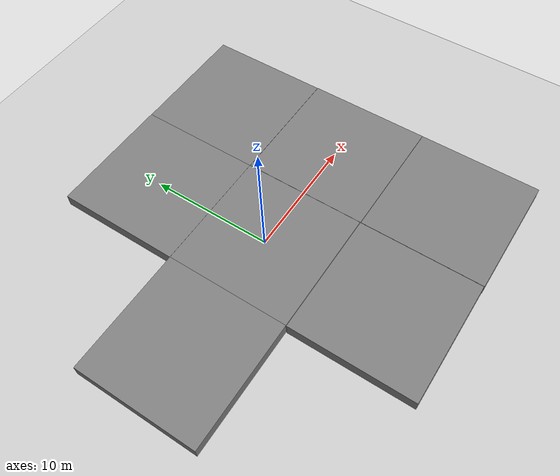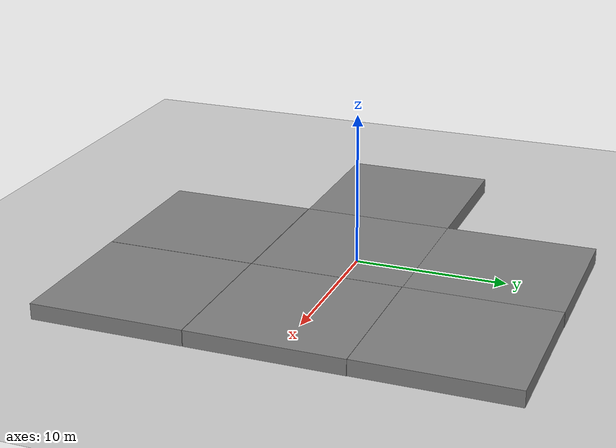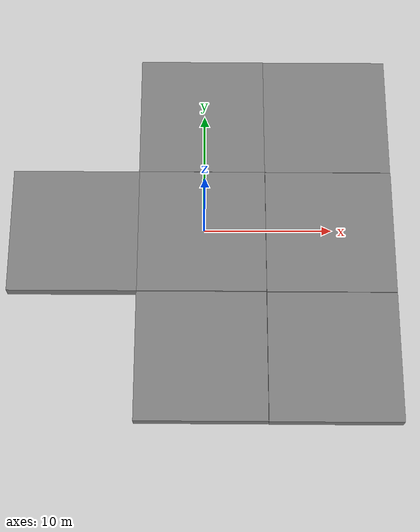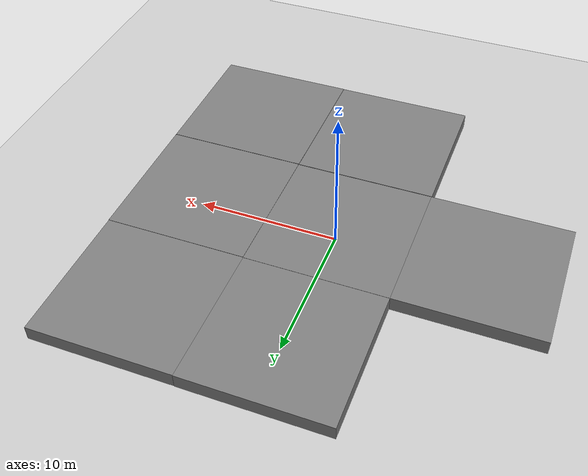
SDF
<sdf version="1.7">
 <world name="default">
  <model name="ground_plane">
   <static>1</static>
   <link name="link">
    <collision name="collision">
     <geometry><plane><normal>0 0 1</normal><size>100 100</size></plane></geometry>
     <surface>
      <contact><collide_bitmask>65535</collide_bitmask></contact>
      <friction><ode><mu>100</mu><mu2>50</mu2></ode></friction>
     </surface>
    </collision>
    <visual name="visual">
     <cast_shadows>0</cast_shadows>
     <geometry><plane><normal>0 0 1</normal><size>100 100</size></plane></geometry>
     <material>
      <script><uri>file://media/materials/scripts/gazebo.material</uri><name>Gazebo/Grey</name></script>
     </material>
    </visual>
   </link>
  </model>
  <model name="farm">
   <link name="link">
    <inertial>
     <mass>1</mass>
     <inertia><ixx>1</ixx><ixy>0</ixy><ixz>0</ixz><iyy>1</iyy><iyz>0</iyz><izz>1</izz></inertia>
    </inertial>
    <visual name="visual_1">
     <pose>2 2.5 0 0 -0 0</pose>
     <cast_shadows>0</cast_shadows>
     <geometry><box><size>10 10 2</size></box></geometry>
     <material>
      <script>
       <uri>model://mud_box/materials/scripts</uri>
       <uri>model://mud_box/materials/textures</uri>
       <name>vrc/mud</name>
      </script>
      <shader type="pixel"><normal_map>__default__</normal_map></shader>
      <ambient>0.5 0.5 0.5 1</ambient>
      <diffuse>0.5 0.5 0.5 1</diffuse>
      <specular>0.2 0.2 0.2 1</specular>
      <emissive>0 0 0 1</emissive>
     </material>
    </visual>
    <visual name="visual_2">
     <pose>2 2.5 0 0 -0 0</pose>
     <cast_shadows>0</cast_shadows>
     <geometry><box><size>10 10 2</size></box></geometry>
     <material>
      <script>
       <uri>model://mud_box/materials/scripts</uri>
       <uri>model://mud_box/materials/textures</uri>
       <name>vrc/mud</name>
      </script>
      <shader type="pixel"><normal_map>__default__</normal_map></shader>
      <ambient>0.5 0.5 0.5 1</ambient>
      <diffuse>0.5 0.5 0.5 1</diffuse>
      <specular>0.2 0.2 0.2 1</specular>
      <emissive>0 0 0 1</emissive>
     </material>
    </visual>
    <visual name="visual_4">
     <pose>2 2.5 0 0 -0 0</pose>
     <cast_shadows>0</cast_shadows>
     <geometry><box><size>10 10 2</size></box></geometry>
     <material>
      <script>
       <uri>model://mud_box/materials/scripts</uri>
       <uri>model://mud_box/materials/textures</uri>
       <name>vrc/mud</name>
      </script>
      <shader type="pixel"><normal_map>__default__</normal_map></shader>
      <ambient>0.5 0.5 0.5 1</ambient>
      <diffuse>0.5 0.5 0.5 1</diffuse>
      <specular>0.2 0.2 0.2 1</specular>
      <emissive>0 0 0 1</emissive>
     </material>
    </visual>
    <visual name="visual_3">
     <pose>2 2.5 0 0 -0 0</pose>
     <cast_shadows>0</cast_shadows>
     <geometry><box><size>10 10 2</size></box></geometry>
     <material>
      <script>
       <uri>model://mud_box/materials/scripts</uri>
       <uri>model://mud_box/materials/textures</uri>
       <name>vrc/mud</name>
      </script>
      <shader type="pixel"><normal_map>__default__</normal_map></shader>
      <ambient>0.5 0.5 0.5 1</ambient>
      <diffuse>0.5 0.5 0.5 1</diffuse>
      <specular>0.2 0.2 0.2 1</specular>
      <emissive>0 0 0 1</emissive>
     </material>
    </visual>
    <collision name="collision">
     <laser_retro>0.3</laser_retro>
     <pose>2 2.5 0 0 -0 0</pose>
     <geometry><box><size>100 100 2</size></box></geometry>
     <surface>
      <friction>
       <ode><mu>1.2</mu><mu2>1.2</mu2><fdir1>0 0 0</fdir1><slip1>0.01</slip1><slip2>0.01</slip2></ode>
       <torsional>
        <coefficient>0.05</coefficient>
        <patch_radius>0.08</patch_radius>
        <surface_radius>0.05</surface_radius>
        <use_patch_radius>1</use_patch_radius>
        <ode><slip>0</slip></ode>
       </torsional>
      </friction>
      <bounce><restitution_coefficient>0</restitution_coefficient><threshold>1</threshold></bounce>
      <contact>
       <collide_without_contact>0</collide_without_contact>
       <collide_without_contact_bitmask>1</collide_without_contact_bitmask>
       <collide_bitmask>1</collide_bitmask>
       <ode>
        <soft_cfm>0</soft_cfm>
        <soft_erp>1</soft_erp>
        <kp>1e+07</kp>
        <kd>5000</kd>
        <max_vel>0.001</max_vel>
        <min_depth>0.0005</min_depth>
       </ode>
       <bullet>
        <split_impulse>1</split_impulse>
        <split_impulse_penetration_threshold>-0.01</split_impulse_penetration_threshold>
        <soft_cfm>0</soft_cfm>
        <soft_erp>1</soft_erp>
        <kp>1e+07</kp>
        <kd>5000</kd>
       </bullet>
      </contact>
     </surface>
    </collision>
   </link>
   <static>1</static>
   <pose>-2.22131 -2.84846 0 0 -0 0</pose>
  </model>
  <model name="farm_clone">
   <link name="link">
    <inertial>
     <mass>1</mass>
     <inertia><ixx>1</ixx><ixy>0</ixy><ixz>0</ixz><iyy>1</iyy><iyz>0</iyz><izz>1</izz></inertia>
    </inertial>
    <visual name="visual_1">
     <pose>2 2.5 0 0 -0 0</pose>
     <cast_shadows>0</cast_shadows>
     <geometry><box><size>10 10 2</size></box></geometry>
     <material>
      <script>
       <uri>model://mud_box/materials/scripts</uri>
       <uri>model://mud_box/materials/textures</uri>
       <name>vrc/mud</name>
      </script>
      <shader type="pixel"><normal_map>__default__</normal_map></shader>
      <ambient>0.5 0.5 0.5 1</ambient>
      <diffuse>0.5 0.5 0.5 1</diffuse>
      <specular>0.2 0.2 0.2 1</specular>
      <emissive>0 0 0 1</emissive>
     </material>
    </visual>
    <visual name="visual_2">
     <pose>2 2.5 0 0 -0 0</pose>
     <cast_shadows>0</cast_shadows>
     <geometry><box><size>10 10 2</size></box></geometry>
     <material>
      <script>
       <uri>model://mud_box/materials/scripts</uri>
       <uri>model://mud_box/materials/textures</uri>
       <name>vrc/mud</name>
      </script>
      <shader type="pixel"><normal_map>__default__</normal_map></shader>
      <ambient>0.5 0.5 0.5 1</ambient>
      <diffuse>0.5 0.5 0.5 1</diffuse>
      <specular>0.2 0.2 0.2 1</specular>
      <emissive>0 0 0 1</emissive>
     </material>
    </visual>
    <visual name="visual_4">
     <pose>2 2.5 0 0 -0 0</pose>
     <cast_shadows>0</cast_shadows>
     <geometry><box><size>10 10 2</size></box></geometry>
     <material>
      <script>
       <uri>model://mud_box/materials/scripts</uri>
       <uri>model://mud_box/materials/textures</uri>
       <name>vrc/mud</name>
      </script>
      <shader type="pixel"><normal_map>__default__</normal_map></shader>
      <ambient>0.5 0.5 0.5 1</ambient>
      <diffuse>0.5 0.5 0.5 1</diffuse>
      <specular>0.2 0.2 0.2 1</specular>
      <emissive>0 0 0 1</emissive>
     </material>
    </visual>
    <visual name="visual_3">
     <pose>2 2.5 0 0 -0 0</pose>
     <cast_shadows>0</cast_shadows>
     <geometry><box><size>10 10 2</size></box></geometry>
     <material>
      <script>
       <uri>model://mud_box/materials/scripts</uri>
       <uri>model://mud_box/materials/textures</uri>
       <name>vrc/mud</name>
      </script>
      <shader type="pixel"><normal_map>__default__</normal_map></shader>
      <ambient>0.5 0.5 0.5 1</ambient>
      <diffuse>0.5 0.5 0.5 1</diffuse>
      <specular>0.2 0.2 0.2 1</specular>
      <emissive>0 0 0 1</emissive>
     </material>
    </visual>
    <collision name="collision">
     <laser_retro>0.3</laser_retro>
     <pose>2 2.5 0 0 -0 0</pose>
     <geometry><box><size>100 100 2</size></box></geometry>
     <surface>
      <friction>
       <ode><mu>1.2</mu><mu2>1.2</mu2><fdir1>0 0 0</fdir1><slip1>0.01</slip1><slip2>0.01</slip2></ode>
       <torsional>
        <coefficient>0.05</coefficient>
        <patch_radius>0.08</patch_radius>
        <surface_radius>0.05</surface_radius>
        <use_patch_radius>1</use_patch_radius>
        <ode><slip>0</slip></ode>
       </torsional>
      </friction>
      <bounce><restitution_coefficient>0</restitution_coefficient><threshold>1</threshold></bounce>
      <contact>
       <collide_without_contact>0</collide_without_contact>
       <collide_without_contact_bitmask>1</collide_without_contact_bitmask>
       <collide_bitmask>1</collide_bitmask>
       <ode>
        <soft_cfm>0</soft_cfm>
        <soft_erp>1</soft_erp>
        <kp>1e+07</kp>
        <kd>5000</kd>
        <max_vel>0.001</max_vel>
        <min_depth>0.0005</min_depth>
       </ode>
       <bullet>
        <split_impulse>1</split_impulse>
        <split_impulse_penetration_threshold>-0.01</split_impulse_penetration_threshold>
        <soft_cfm>0</soft_cfm>
        <soft_erp>1</soft_erp>
        <kp>1e+07</kp>
        <kd>5000</kd>
       </bullet>
      </contact>
     </surface>
    </collision>
   </link>
   <static>1</static>
   <pose>-2.23193 -12.8916 0 0 -0 0</pose>
  </model>
  <model name="farm_clone_0_clone">
   <link name="link">
    <inertial>
     <mass>1</mass>
     <inertia><ixx>1</ixx><ixy>0</ixy><ixz>0</ixz><iyy>1</iyy><iyz>0</iyz><izz>1</izz></inertia>
    </inertial>
    <visual name="visual_1">
     <pose>2 2.5 0 0 -0 0</pose>
     <cast_shadows>0</cast_shadows>
     <geometry><box><size>10 10 2</size></box></geometry>
     <material>
      <script>
       <uri>model://mud_box/materials/scripts</uri>
       <uri>model://mud_box/materials/textures</uri>
       <name>vrc/mud</name>
      </script>
      <shader type="pixel"><normal_map>__default__</normal_map></shader>
      <ambient>0.5 0.5 0.5 1</ambient>
      <diffuse>0.5 0.5 0.5 1</diffuse>
      <specular>0.2 0.2 0.2 1</specular>
      <emissive>0 0 0 1</emissive>
     </material>
    </visual>
    <visual name="visual_2">
     <pose>2 2.5 0 0 -0 0</pose>
     <cast_shadows>0</cast_shadows>
     <geometry><box><size>10 10 2</size></box></geometry>
     <material>
      <script>
       <uri>model://mud_box/materials/scripts</uri>
       <uri>model://mud_box/materials/textures</uri>
       <name>vrc/mud</name>
      </script>
      <shader type="pixel"><normal_map>__default__</normal_map></shader>
      <ambient>0.5 0.5 0.5 1</ambient>
      <diffuse>0.5 0.5 0.5 1</diffuse>
      <specular>0.2 0.2 0.2 1</specular>
      <emissive>0 0 0 1</emissive>
     </material>
    </visual>
    <visual name="visual_4">
     <pose>2 2.5 0 0 -0 0</pose>
     <cast_shadows>0</cast_shadows>
     <geometry><box><size>10 10 2</size></box></geometry>
     <material>
      <script>
       <uri>model://mud_box/materials/scripts</uri>
       <uri>model://mud_box/materials/textures</uri>
       <name>vrc/mud</name>
      </script>
      <shader type="pixel"><normal_map>__default__</normal_map></shader>
      <ambient>0.5 0.5 0.5 1</ambient>
      <diffuse>0.5 0.5 0.5 1</diffuse>
      <specular>0.2 0.2 0.2 1</specular>
      <emissive>0 0 0 1</emissive>
     </material>
    </visual>
    <visual name="visual_3">
     <pose>2 2.5 0 0 -0 0</pose>
     <cast_shadows>0</cast_shadows>
     <geometry><box><size>10 10 2</size></box></geometry>
     <material>
      <script>
       <uri>model://mud_box/materials/scripts</uri>
       <uri>model://mud_box/materials/textures</uri>
       <name>vrc/mud</name>
      </script>
      <shader type="pixel"><normal_map>__default__</normal_map></shader>
      <ambient>0.5 0.5 0.5 1</ambient>
      <diffuse>0.5 0.5 0.5 1</diffuse>
      <specular>0.2 0.2 0.2 1</specular>
      <emissive>0 0 0 1</emissive>
     </material>
    </visual>
    <collision name="collision">
     <laser_retro>0.3</laser_retro>
     <pose>2 2.5 0 0 -0 0</pose>
     <geometry><box><size>100 100 2</size></box></geometry>
     <surface>
      <friction>
       <ode><mu>1.2</mu><mu2>1.2</mu2><fdir1>0 0 0</fdir1><slip1>0.01</slip1><slip2>0.01</slip2></ode>
       <torsional>
        <coefficient>0.05</coefficient>
        <patch_radius>0.08</patch_radius>
        <surface_radius>0.05</surface_radius>
        <use_patch_radius>1</use_patch_radius>
        <ode><slip>0</slip></ode>
       </torsional>
      </friction>
      <bounce><restitution_coefficient>0</restitution_coefficient><threshold>1</threshold></bounce>
      <contact>
       <collide_without_contact>0</collide_without_contact>
       <collide_without_contact_bitmask>1</collide_without_contact_bitmask>
       <collide_bitmask>1</collide_bitmask>
       <ode>
        <soft_cfm>0</soft_cfm>
        <soft_erp>1</soft_erp>
        <kp>1e+07</kp>
        <kd>5000</kd>
        <max_vel>0.001</max_vel>
        <min_depth>0.0005</min_depth>
       </ode>
       <bullet>
        <split_impulse>1</split_impulse>
        <split_impulse_penetration_threshold>-0.01</split_impulse_penetration_threshold>
        <soft_cfm>0</soft_cfm>
        <soft_erp>1</soft_erp>
        <kp>1e+07</kp>
        <kd>5000</kd>
       </bullet>
      </contact>
     </surface>
    </collision>
   </link>
   <static>1</static>
   <pose>-12.2084 -2.84715 0 0 -0 0</pose>
  </model>
  <model name="farm_clone_0_clone_1_clone_1_clone">
   <link name="link">
    <inertial>
     <mass>1</mass>
     <inertia><ixx>1</ixx><ixy>0</ixy><ixz>0</ixz><iyy>1</iyy><iyz>0</iyz><izz>1</izz></inertia>
    </inertial>
    <visual name="visual_1">
     <pose>2 2.5 0 0 -0 0</pose>
     <cast_shadows>0</cast_shadows>
     <geometry><box><size>10 10 2</size></box></geometry>
     <material>
      <script>
       <uri>model://mud_box/materials/scripts</uri>
       <uri>model://mud_box/materials/textures</uri>
       <name>vrc/mud</name>
      </script>
      <shader type="pixel"><normal_map>__default__</normal_map></shader>
      <ambient>0.5 0.5 0.5 1</ambient>
      <diffuse>0.5 0.5 0.5 1</diffuse>
      <specular>0.2 0.2 0.2 1</specular>
      <emissive>0 0 0 1</emissive>
     </material>
    </visual>
    <visual name="visual_2">
     <pose>2 2.5 0 0 -0 0</pose>
     <cast_shadows>0</cast_shadows>
     <geometry><box><size>10 10 2</size></box></geometry>
     <material>
      <script>
       <uri>model://mud_box/materials/scripts</uri>
       <uri>model://mud_box/materials/textures</uri>
       <name>vrc/mud</name>
      </script>
      <shader type="pixel"><normal_map>__default__</normal_map></shader>
      <ambient>0.5 0.5 0.5 1</ambient>
      <diffuse>0.5 0.5 0.5 1</diffuse>
      <specular>0.2 0.2 0.2 1</specular>
      <emissive>0 0 0 1</emissive>
     </material>
    </visual>
    <visual name="visual_4">
     <pose>2 2.5 0 0 -0 0</pose>
     <cast_shadows>0</cast_shadows>
     <geometry><box><size>10 10 2</size></box></geometry>
     <material>
      <script>
       <uri>model://mud_box/materials/scripts</uri>
       <uri>model://mud_box/materials/textures</uri>
       <name>vrc/mud</name>
      </script>
      <shader type="pixel"><normal_map>__default__</normal_map></shader>
      <ambient>0.5 0.5 0.5 1</ambient>
      <diffuse>0.5 0.5 0.5 1</diffuse>
      <specular>0.2 0.2 0.2 1</specular>
      <emissive>0 0 0 1</emissive>
     </material>
    </visual>
    <visual name="visual_3">
     <pose>2 2.5 0 0 -0 0</pose>
     <cast_shadows>0</cast_shadows>
     <geometry><box><size>10 10 2</size></box></geometry>
     <material>
      <script>
       <uri>model://mud_box/materials/scripts</uri>
       <uri>model://mud_box/materials/textures</uri>
       <name>vrc/mud</name>
      </script>
      <shader type="pixel"><normal_map>__default__</normal_map></shader>
      <ambient>0.5 0.5 0.5 1</ambient>
      <diffuse>0.5 0.5 0.5 1</diffuse>
      <specular>0.2 0.2 0.2 1</specular>
      <emissive>0 0 0 1</emissive>
     </material>
    </visual>
    <collision name="collision">
     <laser_retro>0.3</laser_retro>
     <pose>2 2.5 0 0 -0 0</pose>
     <geometry><box><size>100 100 2</size></box></geometry>
     <surface>
      <friction>
       <ode><mu>1.2</mu><mu2>1.2</mu2><fdir1>0 0 0</fdir1><slip1>0.01</slip1><slip2>0.01</slip2></ode>
       <torsional>
        <coefficient>0.05</coefficient>
        <patch_radius>0.08</patch_radius>
        <surface_radius>0.05</surface_radius>
        <use_patch_radius>1</use_patch_radius>
        <ode><slip>0</slip></ode>
       </torsional>
      </friction>
      <bounce><restitution_coefficient>0</restitution_coefficient><threshold>1</threshold></bounce>
      <contact>
       <collide_without_contact>0</collide_without_contact>
       <collide_without_contact_bitmask>1</collide_without_contact_bitmask>
       <collide_bitmask>1</collide_bitmask>
       <ode>
        <soft_cfm>0</soft_cfm>
        <soft_erp>1</soft_erp>
        <kp>1e+07</kp>
        <kd>5000</kd>
        <max_vel>0.001</max_vel>
        <min_depth>0.0005</min_depth>
       </ode>
       <bullet>
        <split_impulse>1</split_impulse>
        <split_impulse_penetration_threshold>-0.01</split_impulse_penetration_threshold>
        <soft_cfm>0</soft_cfm>
        <soft_erp>1</soft_erp>
        <kp>1e+07</kp>
        <kd>5000</kd>
       </bullet>
      </contact>
     </surface>
    </collision>
   </link>
   <static>1</static>
   <pose>7.78936 -2.88285 0 0 -0 0</pose>
  </model>
  <model name="farm_clone_0_clone_1_clone_1_clone_0">
   <link name="link">
    <inertial>
     <mass>1</mass>
     <inertia><ixx>1</ixx><ixy>0</ixy><ixz>0</ixz><iyy>1</iyy><iyz>0</iyz><izz>1</izz></inertia>
    </inertial>
    <visual name="visual_1">
     <pose>2 2.5 0 0 -0 0</pose>
     <cast_shadows>0</cast_shadows>
     <geometry><box><size>10 10 2</size></box></geometry>
     <material>
      <script>
       <uri>model://mud_box/materials/scripts</uri>
       <uri>model://mud_box/materials/textures</uri>
       <name>vrc/mud</name>
      </script>
      <shader type="pixel"><normal_map>__default__</normal_map></shader>
      <ambient>0.5 0.5 0.5 1</ambient>
      <diffuse>0.5 0.5 0.5 1</diffuse>
      <specular>0.2 0.2 0.2 1</specular>
      <emissive>0 0 0 1</emissive>
     </material>
    </visual>
    <visual name="visual_2">
     <pose>2 2.5 0 0 -0 0</pose>
     <cast_shadows>0</cast_shadows>
     <geometry><box><size>10 10 2</size></box></geometry>
     <material>
      <script>
       <uri>model://mud_box/materials/scripts</uri>
       <uri>model://mud_box/materials/textures</uri>
       <name>vrc/mud</name>
      </script>
      <shader type="pixel"><normal_map>__default__</normal_map></shader>
      <ambient>0.5 0.5 0.5 1</ambient>
      <diffuse>0.5 0.5 0.5 1</diffuse>
      <specular>0.2 0.2 0.2 1</specular>
      <emissive>0 0 0 1</emissive>
     </material>
    </visual>
    <visual name="visual_4">
     <pose>2 2.5 0 0 -0 0</pose>
     <cast_shadows>0</cast_shadows>
     <geometry><box><size>10 10 2</size></box></geometry>
     <material>
      <script>
       <uri>model://mud_box/materials/scripts</uri>
       <uri>model://mud_box/materials/textures</uri>
       <name>vrc/mud</name>
      </script>
      <shader type="pixel"><normal_map>__default__</normal_map></shader>
      <ambient>0.5 0.5 0.5 1</ambient>
      <diffuse>0.5 0.5 0.5 1</diffuse>
      <specular>0.2 0.2 0.2 1</specular>
      <emissive>0 0 0 1</emissive>
     </material>
    </visual>
    <visual name="visual_3">
     <pose>2 2.5 0 0 -0 0</pose>
     <cast_shadows>0</cast_shadows>
     <geometry><box><size>10 10 2</size></box></geometry>
     <material>
      <script>
       <uri>model://mud_box/materials/scripts</uri>
       <uri>model://mud_box/materials/textures</uri>
       <name>vrc/mud</name>
      </script>
      <shader type="pixel"><normal_map>__default__</normal_map></shader>
      <ambient>0.5 0.5 0.5 1</ambient>
      <diffuse>0.5 0.5 0.5 1</diffuse>
      <specular>0.2 0.2 0.2 1</specular>
      <emissive>0 0 0 1</emissive>
     </material>
    </visual>
    <collision name="collision">
     <laser_retro>0.3</laser_retro>
     <pose>2 2.5 0 0 -0 0</pose>
     <geometry><box><size>100 100 2</size></box></geometry>
     <surface>
      <friction>
       <ode><mu>1.2</mu><mu2>1.2</mu2><fdir1>0 0 0</fdir1><slip1>0.01</slip1><slip2>0.01</slip2></ode>
       <torsional>
        <coefficient>0.05</coefficient>
        <patch_radius>0.08</patch_radius>
        <surface_radius>0.05</surface_radius>
        <use_patch_radius>1</use_patch_radius>
        <ode><slip>0</slip></ode>
       </torsional>
      </friction>
      <bounce><restitution_coefficient>0</restitution_coefficient><threshold>1</threshold></bounce>
      <contact>
       <collide_without_contact>0</collide_without_contact>
       <collide_without_contact_bitmask>1</collide_without_contact_bitmask>
       <collide_bitmask>1</collide_bitmask>
       <ode>
        <soft_cfm>0</soft_cfm>
        <soft_erp>1</soft_erp>
        <kp>1e+07</kp>
        <kd>5000</kd>
        <max_vel>0.001</max_vel>
        <min_depth>0.0005</min_depth>
       </ode>
       <bullet>
        <split_impulse>1</split_impulse>
        <split_impulse_penetration_threshold>-0.01</split_impulse_penetration_threshold>
        <soft_cfm>0</soft_cfm>
        <soft_erp>1</soft_erp>
        <kp>1e+07</kp>
        <kd>5000</kd>
       </bullet>
      </contact>
     </surface>
    </collision>
   </link>
   <static>1</static>
   <pose>7.78936 -12.9146 0 0 -0 0</pose>
  </model>
  <model name="farm_clone_0_clone_1_clone_1_clone_6">
   <link name="link">
    <inertial>
     <mass>1</mass>
     <inertia><ixx>1</ixx><ixy>0</ixy><ixz>0</ixz><iyy>1</iyy><iyz>0</iyz><izz>1</izz></inertia>
    </inertial>
    <visual name="visual_1">
     <pose>2 2.5 0 0 -0 0</pose>
     <cast_shadows>0</cast_shadows>
     <geometry><box><size>10 10 2</size></box></geometry>
     <material>
      <script>
       <uri>model://mud_box/materials/scripts</uri>
       <uri>model://mud_box/materials/textures</uri>
       <name>vrc/mud</name>
      </script>
      <shader type="pixel"><normal_map>__default__</normal_map></shader>
      <ambient>0.5 0.5 0.5 1</ambient>
      <diffuse>0.5 0.5 0.5 1</diffuse>
      <specular>0.2 0.2 0.2 1</specular>
      <emissive>0 0 0 1</emissive>
     </material>
    </visual>
    <visual name="visual_2">
     <pose>2 2.5 0 0 -0 0</pose>
     <cast_shadows>0</cast_shadows>
     <geometry><box><size>10 10 2</size></box></geometry>
     <material>
      <script>
       <uri>model://mud_box/materials/scripts</uri>
       <uri>model://mud_box/materials/textures</uri>
       <name>vrc/mud</name>
      </script>
      <shader type="pixel"><normal_map>__default__</normal_map></shader>
      <ambient>0.5 0.5 0.5 1</ambient>
      <diffuse>0.5 0.5 0.5 1</diffuse>
      <specular>0.2 0.2 0.2 1</specular>
      <emissive>0 0 0 1</emissive>
     </material>
    </visual>
    <visual name="visual_4">
     <pose>2 2.5 0 0 -0 0</pose>
     <cast_shadows>0</cast_shadows>
     <geometry><box><size>10 10 2</size></box></geometry>
     <material>
      <script>
       <uri>model://mud_box/materials/scripts</uri>
       <uri>model://mud_box/materials/textures</uri>
       <name>vrc/mud</name>
      </script>
      <shader type="pixel"><normal_map>__default__</normal_map></shader>
      <ambient>0.5 0.5 0.5 1</ambient>
      <diffuse>0.5 0.5 0.5 1</diffuse>
      <specular>0.2 0.2 0.2 1</specular>
      <emissive>0 0 0 1</emissive>
     </material>
    </visual>
    <visual name="visual_3">
     <pose>2 2.5 0 0 -0 0</pose>
     <cast_shadows>0</cast_shadows>
     <geometry><box><size>10 10 2</size></box></geometry>
     <material>
      <script>
       <uri>model://mud_box/materials/scripts</uri>
       <uri>model://mud_box/materials/textures</uri>
       <name>vrc/mud</name>
      </script>
      <shader type="pixel"><normal_map>__default__</normal_map></shader>
      <ambient>0.5 0.5 0.5 1</ambient>
      <diffuse>0.5 0.5 0.5 1</diffuse>
      <specular>0.2 0.2 0.2 1</specular>
      <emissive>0 0 0 1</emissive>
     </material>
    </visual>
    <collision name="collision">
     <laser_retro>0.3</laser_retro>
     <pose>2 2.5 0 0 -0 0</pose>
     <geometry><box><size>100 100 2</size></box></geometry>
     <surface>
      <friction>
       <ode><mu>1.2</mu><mu2>1.2</mu2><fdir1>0 0 0</fdir1><slip1>0.01</slip1><slip2>0.01</slip2></ode>
       <torsional>
        <coefficient>0.05</coefficient>
        <patch_radius>0.08</patch_radius>
        <surface_radius>0.05</surface_radius>
        <use_patch_radius>1</use_patch_radius>
        <ode><slip>0</slip></ode>
       </torsional>
      </friction>
      <bounce><restitution_coefficient>0</restitution_coefficient><threshold>1</threshold></bounce>
      <contact>
       <collide_without_contact>0</collide_without_contact>
       <collide_without_contact_bitmask>1</collide_without_contact_bitmask>
       <collide_bitmask>1</collide_bitmask>
       <ode>
        <soft_cfm>0</soft_cfm>
        <soft_erp>1</soft_erp>
        <kp>1e+07</kp>
        <kd>5000</kd>
        <max_vel>0.001</max_vel>
        <min_depth>0.0005</min_depth>
       </ode>
       <bullet>
        <split_impulse>1</split_impulse>
        <split_impulse_penetration_threshold>-0.01</split_impulse_penetration_threshold>
        <soft_cfm>0</soft_cfm>
        <soft_erp>1</soft_erp>
        <kp>1e+07</kp>
        <kd>5000</kd>
       </bullet>
      </contact>
     </surface>
    </collision>
   </link>
   <static>1</static>
   <pose>7.76362 7.13543 0 0 -0 0</pose>
  </model>
  <model name="farm_clone_0_clone_1_clone_1_clone_7">
   <link name="link">
    <inertial>
     <mass>1</mass>
     <inertia><ixx>1</ixx><ixy>0</ixy><ixz>0</ixz><iyy>1</iyy><iyz>0</iyz><izz>1</izz></inertia>
    </inertial>
    <visual name="visual_1">
     <pose>2 2.5 0 0 -0 0</pose>
     <cast_shadows>0</cast_shadows>
     <geometry><box><size>10 10 2</size></box></geometry>
     <material>
      <script>
       <uri>model://mud_box/materials/scripts</uri>
       <uri>model://mud_box/materials/textures</uri>
       <name>vrc/mud</name>
      </script>
      <shader type="pixel"><normal_map>__default__</normal_map></shader>
      <ambient>0.5 0.5 0.5 1</ambient>
      <diffuse>0.5 0.5 0.5 1</diffuse>
      <specular>0.2 0.2 0.2 1</specular>
      <emissive>0 0 0 1</emissive>
     </material>
    </visual>
    <visual name="visual_2">
     <pose>2 2.5 0 0 -0 0</pose>
     <cast_shadows>0</cast_shadows>
     <geometry><box><size>10 10 2</size></box></geometry>
     <material>
      <script>
       <uri>model://mud_box/materials/scripts</uri>
       <uri>model://mud_box/materials/textures</uri>
       <name>vrc/mud</name>
      </script>
      <shader type="pixel"><normal_map>__default__</normal_map></shader>
      <ambient>0.5 0.5 0.5 1</ambient>
      <diffuse>0.5 0.5 0.5 1</diffuse>
      <specular>0.2 0.2 0.2 1</specular>
      <emissive>0 0 0 1</emissive>
     </material>
    </visual>
    <visual name="visual_4">
     <pose>2 2.5 0 0 -0 0</pose>
     <cast_shadows>0</cast_shadows>
     <geometry><box><size>10 10 2</size></box></geometry>
     <material>
      <script>
       <uri>model://mud_box/materials/scripts</uri>
       <uri>model://mud_box/materials/textures</uri>
       <name>vrc/mud</name>
      </script>
      <shader type="pixel"><normal_map>__default__</normal_map></shader>
      <ambient>0.5 0.5 0.5 1</ambient>
      <diffuse>0.5 0.5 0.5 1</diffuse>
      <specular>0.2 0.2 0.2 1</specular>
      <emissive>0 0 0 1</emissive>
     </material>
    </visual>
    <visual name="visual_3">
     <pose>2 2.5 0 0 -0 0</pose>
     <cast_shadows>0</cast_shadows>
     <geometry><box><size>10 10 2</size></box></geometry>
     <material>
      <script>
       <uri>model://mud_box/materials/scripts</uri>
       <uri>model://mud_box/materials/textures</uri>
       <name>vrc/mud</name>
      </script>
      <shader type="pixel"><normal_map>__default__</normal_map></shader>
      <ambient>0.5 0.5 0.5 1</ambient>
      <diffuse>0.5 0.5 0.5 1</diffuse>
      <specular>0.2 0.2 0.2 1</specular>
      <emissive>0 0 0 1</emissive>
     </material>
    </visual>
    <collision name="collision">
     <laser_retro>0.3</laser_retro>
     <pose>2 2.5 0 0 -0 0</pose>
     <geometry><box><size>100 100 2</size></box></geometry>
     <surface>
      <friction>
       <ode><mu>1.2</mu><mu2>1.2</mu2><fdir1>0 0 0</fdir1><slip1>0.01</slip1><slip2>0.01</slip2></ode>
       <torsional>
        <coefficient>0.05</coefficient>
        <patch_radius>0.08</patch_radius>
        <surface_radius>0.05</surface_radius>
        <use_patch_radius>1</use_patch_radius>
        <ode><slip>0</slip></ode>
       </torsional>
      </friction>
      <bounce><restitution_coefficient>0</restitution_coefficient><threshold>1</threshold></bounce>
      <contact>
       <collide_without_contact>0</collide_without_contact>
       <collide_without_contact_bitmask>1</collide_without_contact_bitmask>
       <collide_bitmask>1</collide_bitmask>
       <ode>
        <soft_cfm>0</soft_cfm>
        <soft_erp>1</soft_erp>
        <kp>1e+07</kp>
        <kd>5000</kd>
        <max_vel>0.001</max_vel>
        <min_depth>0.0005</min_depth>
       </ode>
       <bullet>
        <split_impulse>1</split_impulse>
        <split_impulse_penetration_threshold>-0.01</split_impulse_penetration_threshold>
        <soft_cfm>0</soft_cfm>
        <soft_erp>1</soft_erp>
        <kp>1e+07</kp>
        <kd>5000</kd>
       </bullet>
      </contact>
     </surface>
    </collision>
   </link>
   <static>1</static>
   <pose>-2.22949 7.15842 0 0 -0 0</pose>
  </model>
 </world>
</sdf>
